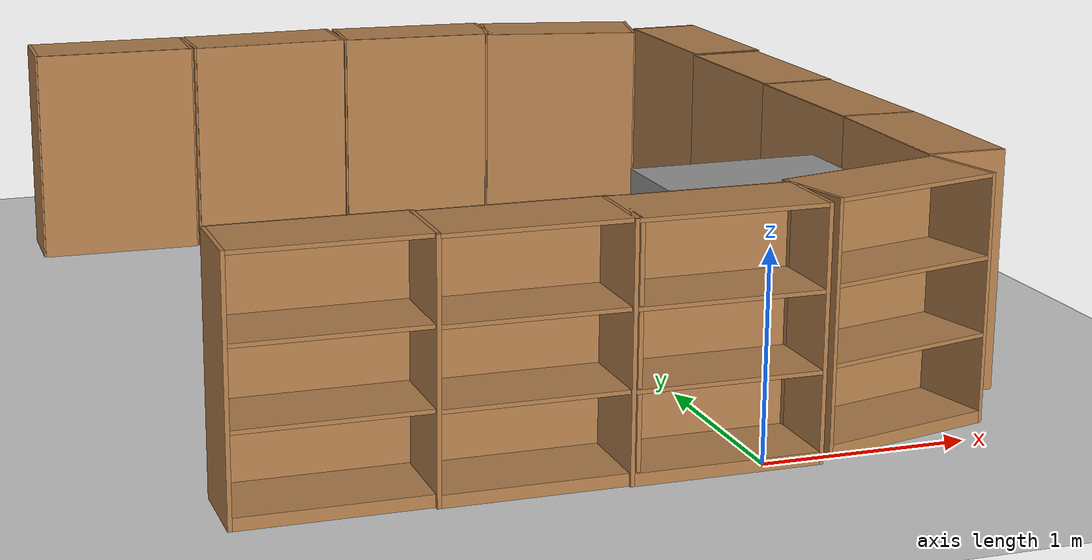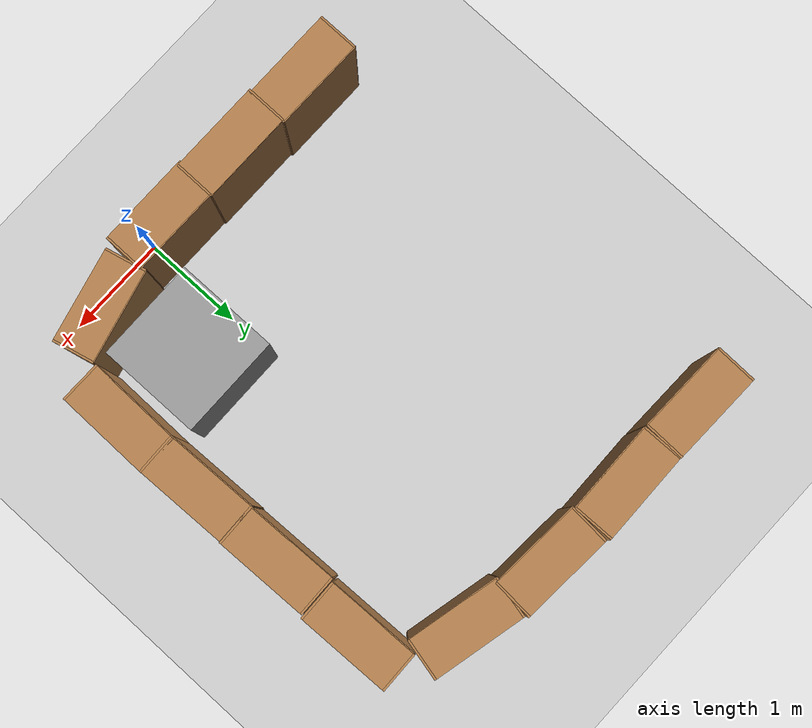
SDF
<sdf version="1.4">
 <world name="default">
  <model name="ground_plane">
   <static>1</static>
   <link name="link">
    <collision name="collision">
     <geometry><plane><normal>0 0 1</normal><size>100 100</size></plane></geometry>
     <surface><friction><ode><mu>100</mu><mu2>50</mu2></ode></friction></surface>
    </collision>
    <visual name="visual">
     <cast_shadows>0</cast_shadows>
     <geometry><plane><normal>0 0 1</normal><size>100 100</size></plane></geometry>
     <material>
      <script><uri>file://media/materials/scripts/gazebo.material</uri><name>Gazebo/Grey</name></script>
     </material>
    </visual>
    <velocity_decay><linear>0</linear><angular>0</angular></velocity_decay>
   </link>
  </model>
  <model name="bookshelf_0">
   <static>1</static>
   <link name="link">
    <inertial><mass>1</mass></inertial>
    <collision name="back">
     <pose>0 0.005 0.6 0 -0 0</pose>
     <geometry><box><size>0.9 0.01 1.2</size></box></geometry>
    </collision>
    <visual name="visual1">
     <pose>0 0.005 0.6 0 -0 0</pose>
     <geometry><box><size>0.9 0.01 1.2</size></box></geometry>
     <material>
      <script><uri>file://media/materials/scripts/gazebo.material</uri><name>Gazebo/Wood</name></script>
     </material>
    </visual>
    <collision name="left_side">
     <pose>0.45 -0.195 0.6 0 -0 0</pose>
     <geometry><box><size>0.02 0.4 1.2</size></box></geometry>
    </collision>
    <visual name="visual2">
     <pose>0.45 -0.195 0.6 0 -0 0</pose>
     <geometry><box><size>0.02 0.4 1.2</size></box></geometry>
     <material>
      <script><uri>file://media/materials/scripts/gazebo.material</uri><name>Gazebo/Wood</name></script>
     </material>
    </visual>
    <collision name="right_side">
     <pose>-0.45 -0.195 0.6 0 -0 0</pose>
     <geometry><box><size>0.02 0.4 1.2</size></box></geometry>
    </collision>
    <visual name="visual3">
     <pose>-0.45 -0.195 0.6 0 -0 0</pose>
     <geometry><box><size>0.02 0.4 1.2</size></box></geometry>
     <material>
      <script><uri>file://media/materials/scripts/gazebo.material</uri><name>Gazebo/Wood</name></script>
     </material>
    </visual>
    <collision name="bottom">
     <pose>0 -0.195 0.03 0 -0 0</pose>
     <geometry><box><size>0.88 0.4 0.06</size></box></geometry>
    </collision>
    <visual name="visual4">
     <pose>0 -0.195 0.03 0 -0 0</pose>
     <geometry><box><size>0.88 0.4 0.06</size></box></geometry>
     <material>
      <script><uri>file://media/materials/scripts/gazebo.material</uri><name>Gazebo/Wood</name></script>
     </material>
    </visual>
    <collision name="top">
     <pose>0 -0.195 1.19 0 -0 0</pose>
     <geometry><box><size>0.88 0.4 0.02</size></box></geometry>
    </collision>
    <visual name="visual5">
     <pose>0 -0.195 1.19 0 -0 0</pose>
     <geometry><box><size>0.88 0.4 0.02</size></box></geometry>
     <material>
      <script><uri>file://media/materials/scripts/gazebo.material</uri><name>Gazebo/Wood</name></script>
     </material>
    </visual>
    <collision name="low_shelf">
     <pose>0 -0.195 0.43 0 -0 0</pose>
     <geometry><box><size>0.88 0.4 0.02</size></box></geometry>
    </collision>
    <visual name="visual6">
     <pose>0 -0.195 0.43 0 -0 0</pose>
     <geometry><box><size>0.88 0.4 0.02</size></box></geometry>
     <material>
      <script><uri>file://media/materials/scripts/gazebo.material</uri><name>Gazebo/Wood</name></script>
     </material>
    </visual>
    <collision name="high_shelf">
     <pose>0 -0.195 0.8 0 -0 0</pose>
     <geometry><box><size>0.88 0.4 0.02</size></box></geometry>
    </collision>
    <visual name="visual7">
     <pose>0 -0.195 0.8 0 -0 0</pose>
     <geometry><box><size>0.88 0.4 0.02</size></box></geometry>
     <material>
      <script><uri>file://media/materials/scripts/gazebo.material</uri><name>Gazebo/Wood</name></script>
     </material>
    </visual>
    <velocity_decay><linear>0</linear><angular>0</angular></velocity_decay>
   </link>
   <pose>-1.96662 0.347335 0 0 -0 0</pose>
  </model>
  <model name="bookshelf_1">
   <static>1</static>
   <link name="link">
    <inertial><mass>1</mass></inertial>
    <collision name="back">
     <pose>0 0.005 0.6 0 -0 0</pose>
     <geometry><box><size>0.9 0.01 1.2</size></box></geometry>
    </collision>
    <visual name="visual1">
     <pose>0 0.005 0.6 0 -0 0</pose>
     <geometry><box><size>0.9 0.01 1.2</size></box></geometry>
     <material>
      <script><uri>file://media/materials/scripts/gazebo.material</uri><name>Gazebo/Wood</name></script>
     </material>
    </visual>
    <collision name="left_side">
     <pose>0.45 -0.195 0.6 0 -0 0</pose>
     <geometry><box><size>0.02 0.4 1.2</size></box></geometry>
    </collision>
    <visual name="visual2">
     <pose>0.45 -0.195 0.6 0 -0 0</pose>
     <geometry><box><size>0.02 0.4 1.2</size></box></geometry>
     <material>
      <script><uri>file://media/materials/scripts/gazebo.material</uri><name>Gazebo/Wood</name></script>
     </material>
    </visual>
    <collision name="right_side">
     <pose>-0.45 -0.195 0.6 0 -0 0</pose>
     <geometry><box><size>0.02 0.4 1.2</size></box></geometry>
    </collision>
    <visual name="visual3">
     <pose>-0.45 -0.195 0.6 0 -0 0</pose>
     <geometry><box><size>0.02 0.4 1.2</size></box></geometry>
     <material>
      <script><uri>file://media/materials/scripts/gazebo.material</uri><name>Gazebo/Wood</name></script>
     </material>
    </visual>
    <collision name="bottom">
     <pose>0 -0.195 0.03 0 -0 0</pose>
     <geometry><box><size>0.88 0.4 0.06</size></box></geometry>
    </collision>
    <visual name="visual4">
     <pose>0 -0.195 0.03 0 -0 0</pose>
     <geometry><box><size>0.88 0.4 0.06</size></box></geometry>
     <material>
      <script><uri>file://media/materials/scripts/gazebo.material</uri><name>Gazebo/Wood</name></script>
     </material>
    </visual>
    <collision name="top">
     <pose>0 -0.195 1.19 0 -0 0</pose>
     <geometry><box><size>0.88 0.4 0.02</size></box></geometry>
    </collision>
    <visual name="visual5">
     <pose>0 -0.195 1.19 0 -0 0</pose>
     <geometry><box><size>0.88 0.4 0.02</size></box></geometry>
     <material>
      <script><uri>file://media/materials/scripts/gazebo.material</uri><name>Gazebo/Wood</name></script>
     </material>
    </visual>
    <collision name="low_shelf">
     <pose>0 -0.195 0.43 0 -0 0</pose>
     <geometry><box><size>0.88 0.4 0.02</size></box></geometry>
    </collision>
    <visual name="visual6">
     <pose>0 -0.195 0.43 0 -0 0</pose>
     <geometry><box><size>0.88 0.4 0.02</size></box></geometry>
     <material>
      <script><uri>file://media/materials/scripts/gazebo.material</uri><name>Gazebo/Wood</name></script>
     </material>
    </visual>
    <collision name="high_shelf">
     <pose>0 -0.195 0.8 0 -0 0</pose>
     <geometry><box><size>0.88 0.4 0.02</size></box></geometry>
    </collision>
    <visual name="visual7">
     <pose>0 -0.195 0.8 0 -0 0</pose>
     <geometry><box><size>0.88 0.4 0.02</size></box></geometry>
     <material>
      <script><uri>file://media/materials/scripts/gazebo.material</uri><name>Gazebo/Wood</name></script>
     </material>
    </visual>
    <velocity_decay><linear>0</linear><angular>0</angular></velocity_decay>
   </link>
   <pose>-1.07116 0.328228 0 0 -0 0</pose>
  </model>
  <model name="bookshelf_2">
   <static>1</static>
   <link name="link">
    <inertial><mass>1</mass></inertial>
    <collision name="back">
     <pose>0 0.005 0.6 0 -0 0</pose>
     <geometry><box><size>0.9 0.01 1.2</size></box></geometry>
    </collision>
    <visual name="visual1">
     <pose>0 0.005 0.6 0 -0 0</pose>
     <geometry><box><size>0.9 0.01 1.2</size></box></geometry>
     <material>
      <script><uri>file://media/materials/scripts/gazebo.material</uri><name>Gazebo/Wood</name></script>
     </material>
    </visual>
    <collision name="left_side">
     <pose>0.45 -0.195 0.6 0 -0 0</pose>
     <geometry><box><size>0.02 0.4 1.2</size></box></geometry>
    </collision>
    <visual name="visual2">
     <pose>0.45 -0.195 0.6 0 -0 0</pose>
     <geometry><box><size>0.02 0.4 1.2</size></box></geometry>
     <material>
      <script><uri>file://media/materials/scripts/gazebo.material</uri><name>Gazebo/Wood</name></script>
     </material>
    </visual>
    <collision name="right_side">
     <pose>-0.45 -0.195 0.6 0 -0 0</pose>
     <geometry><box><size>0.02 0.4 1.2</size></box></geometry>
    </collision>
    <visual name="visual3">
     <pose>-0.45 -0.195 0.6 0 -0 0</pose>
     <geometry><box><size>0.02 0.4 1.2</size></box></geometry>
     <material>
      <script><uri>file://media/materials/scripts/gazebo.material</uri><name>Gazebo/Wood</name></script>
     </material>
    </visual>
    <collision name="bottom">
     <pose>0 -0.195 0.03 0 -0 0</pose>
     <geometry><box><size>0.88 0.4 0.06</size></box></geometry>
    </collision>
    <visual name="visual4">
     <pose>0 -0.195 0.03 0 -0 0</pose>
     <geometry><box><size>0.88 0.4 0.06</size></box></geometry>
     <material>
      <script><uri>file://media/materials/scripts/gazebo.material</uri><name>Gazebo/Wood</name></script>
     </material>
    </visual>
    <collision name="top">
     <pose>0 -0.195 1.19 0 -0 0</pose>
     <geometry><box><size>0.88 0.4 0.02</size></box></geometry>
    </collision>
    <visual name="visual5">
     <pose>0 -0.195 1.19 0 -0 0</pose>
     <geometry><box><size>0.88 0.4 0.02</size></box></geometry>
     <material>
      <script><uri>file://media/materials/scripts/gazebo.material</uri><name>Gazebo/Wood</name></script>
     </material>
    </visual>
    <collision name="low_shelf">
     <pose>0 -0.195 0.43 0 -0 0</pose>
     <geometry><box><size>0.88 0.4 0.02</size></box></geometry>
    </collision>
    <visual name="visual6">
     <pose>0 -0.195 0.43 0 -0 0</pose>
     <geometry><box><size>0.88 0.4 0.02</size></box></geometry>
     <material>
      <script><uri>file://media/materials/scripts/gazebo.material</uri><name>Gazebo/Wood</name></script>
     </material>
    </visual>
    <collision name="high_shelf">
     <pose>0 -0.195 0.8 0 -0 0</pose>
     <geometry><box><size>0.88 0.4 0.02</size></box></geometry>
    </collision>
    <visual name="visual7">
     <pose>0 -0.195 0.8 0 -0 0</pose>
     <geometry><box><size>0.88 0.4 0.02</size></box></geometry>
     <material>
      <script><uri>file://media/materials/scripts/gazebo.material</uri><name>Gazebo/Wood</name></script>
     </material>
    </visual>
    <velocity_decay><linear>0</linear><angular>0</angular></velocity_decay>
   </link>
   <pose>-0.202462 0.315464 0 0 -0 0</pose>
  </model>
  <model name="bookshelf_3">
   <static>1</static>
   <link name="link">
    <inertial><mass>1</mass></inertial>
    <collision name="back">
     <pose>0 0.005 0.6 0 -0 0</pose>
     <geometry><box><size>0.9 0.01 1.2</size></box></geometry>
    </collision>
    <visual name="visual1">
     <pose>0 0.005 0.6 0 -0 0</pose>
     <geometry><box><size>0.9 0.01 1.2</size></box></geometry>
     <material>
      <script><uri>file://media/materials/scripts/gazebo.material</uri><name>Gazebo/Wood</name></script>
     </material>
    </visual>
    <collision name="left_side">
     <pose>0.45 -0.195 0.6 0 -0 0</pose>
     <geometry><box><size>0.02 0.4 1.2</size></box></geometry>
    </collision>
    <visual name="visual2">
     <pose>0.45 -0.195 0.6 0 -0 0</pose>
     <geometry><box><size>0.02 0.4 1.2</size></box></geometry>
     <material>
      <script><uri>file://media/materials/scripts/gazebo.material</uri><name>Gazebo/Wood</name></script>
     </material>
    </visual>
    <collision name="right_side">
     <pose>-0.45 -0.195 0.6 0 -0 0</pose>
     <geometry><box><size>0.02 0.4 1.2</size></box></geometry>
    </collision>
    <visual name="visual3">
     <pose>-0.45 -0.195 0.6 0 -0 0</pose>
     <geometry><box><size>0.02 0.4 1.2</size></box></geometry>
     <material>
      <script><uri>file://media/materials/scripts/gazebo.material</uri><name>Gazebo/Wood</name></script>
     </material>
    </visual>
    <collision name="bottom">
     <pose>0 -0.195 0.03 0 -0 0</pose>
     <geometry><box><size>0.88 0.4 0.06</size></box></geometry>
    </collision>
    <visual name="visual4">
     <pose>0 -0.195 0.03 0 -0 0</pose>
     <geometry><box><size>0.88 0.4 0.06</size></box></geometry>
     <material>
      <script><uri>file://media/materials/scripts/gazebo.material</uri><name>Gazebo/Wood</name></script>
     </material>
    </visual>
    <collision name="top">
     <pose>0 -0.195 1.19 0 -0 0</pose>
     <geometry><box><size>0.88 0.4 0.02</size></box></geometry>
    </collision>
    <visual name="visual5">
     <pose>0 -0.195 1.19 0 -0 0</pose>
     <geometry><box><size>0.88 0.4 0.02</size></box></geometry>
     <material>
      <script><uri>file://media/materials/scripts/gazebo.material</uri><name>Gazebo/Wood</name></script>
     </material>
    </visual>
    <collision name="low_shelf">
     <pose>0 -0.195 0.43 0 -0 0</pose>
     <geometry><box><size>0.88 0.4 0.02</size></box></geometry>
    </collision>
    <visual name="visual6">
     <pose>0 -0.195 0.43 0 -0 0</pose>
     <geometry><box><size>0.88 0.4 0.02</size></box></geometry>
     <material>
      <script><uri>file://media/materials/scripts/gazebo.material</uri><name>Gazebo/Wood</name></script>
     </material>
    </visual>
    <collision name="high_shelf">
     <pose>0 -0.195 0.8 0 -0 0</pose>
     <geometry><box><size>0.88 0.4 0.02</size></box></geometry>
    </collision>
    <visual name="visual7">
     <pose>0 -0.195 0.8 0 -0 0</pose>
     <geometry><box><size>0.88 0.4 0.02</size></box></geometry>
     <material>
      <script><uri>file://media/materials/scripts/gazebo.material</uri><name>Gazebo/Wood</name></script>
     </material>
    </visual>
    <velocity_decay><linear>0</linear><angular>0</angular></velocity_decay>
   </link>
   <pose>0.668091 0.468946 0 0 -0 0.24</pose>
  </model>
  <model name="bookshelf_6">
   <static>1</static>
   <link name="link">
    <inertial><mass>1</mass></inertial>
    <collision name="back">
     <pose>0 0.005 0.6 0 -0 0</pose>
     <geometry><box><size>0.9 0.01 1.2</size></box></geometry>
    </collision>
    <visual name="visual1">
     <pose>0 0.005 0.6 0 -0 0</pose>
     <geometry><box><size>0.9 0.01 1.2</size></box></geometry>
     <material>
      <script><uri>file://media/materials/scripts/gazebo.material</uri><name>Gazebo/Wood</name></script>
     </material>
    </visual>
    <collision name="left_side">
     <pose>0.45 -0.195 0.6 0 -0 0</pose>
     <geometry><box><size>0.02 0.4 1.2</size></box></geometry>
    </collision>
    <visual name="visual2">
     <pose>0.45 -0.195 0.6 0 -0 0</pose>
     <geometry><box><size>0.02 0.4 1.2</size></box></geometry>
     <material>
      <script><uri>file://media/materials/scripts/gazebo.material</uri><name>Gazebo/Wood</name></script>
     </material>
    </visual>
    <collision name="right_side">
     <pose>-0.45 -0.195 0.6 0 -0 0</pose>
     <geometry><box><size>0.02 0.4 1.2</size></box></geometry>
    </collision>
    <visual name="visual3">
     <pose>-0.45 -0.195 0.6 0 -0 0</pose>
     <geometry><box><size>0.02 0.4 1.2</size></box></geometry>
     <material>
      <script><uri>file://media/materials/scripts/gazebo.material</uri><name>Gazebo/Wood</name></script>
     </material>
    </visual>
    <collision name="bottom">
     <pose>0 -0.195 0.03 0 -0 0</pose>
     <geometry><box><size>0.88 0.4 0.06</size></box></geometry>
    </collision>
    <visual name="visual4">
     <pose>0 -0.195 0.03 0 -0 0</pose>
     <geometry><box><size>0.88 0.4 0.06</size></box></geometry>
     <material>
      <script><uri>file://media/materials/scripts/gazebo.material</uri><name>Gazebo/Wood</name></script>
     </material>
    </visual>
    <collision name="top">
     <pose>0 -0.195 1.19 0 -0 0</pose>
     <geometry><box><size>0.88 0.4 0.02</size></box></geometry>
    </collision>
    <visual name="visual5">
     <pose>0 -0.195 1.19 0 -0 0</pose>
     <geometry><box><size>0.88 0.4 0.02</size></box></geometry>
     <material>
      <script><uri>file://media/materials/scripts/gazebo.material</uri><name>Gazebo/Wood</name></script>
     </material>
    </visual>
    <collision name="low_shelf">
     <pose>0 -0.195 0.43 0 -0 0</pose>
     <geometry><box><size>0.88 0.4 0.02</size></box></geometry>
    </collision>
    <visual name="visual6">
     <pose>0 -0.195 0.43 0 -0 0</pose>
     <geometry><box><size>0.88 0.4 0.02</size></box></geometry>
     <material>
      <script><uri>file://media/materials/scripts/gazebo.material</uri><name>Gazebo/Wood</name></script>
     </material>
    </visual>
    <collision name="high_shelf">
     <pose>0 -0.195 0.8 0 -0 0</pose>
     <geometry><box><size>0.88 0.4 0.02</size></box></geometry>
    </collision>
    <visual name="visual7">
     <pose>0 -0.195 0.8 0 -0 0</pose>
     <geometry><box><size>0.88 0.4 0.02</size></box></geometry>
     <material>
      <script><uri>file://media/materials/scripts/gazebo.material</uri><name>Gazebo/Wood</name></script>
     </material>
    </visual>
    <velocity_decay><linear>0</linear><angular>0</angular></velocity_decay>
   </link>
   <pose>-2.11756 4.40334 0 0 -0 3.12318</pose>
  </model>
  <model name="bookshelf_7">
   <static>1</static>
   <link name="link">
    <inertial><mass>1</mass></inertial>
    <collision name="back">
     <pose>0 0.005 0.6 0 -0 0</pose>
     <geometry><box><size>0.9 0.01 1.2</size></box></geometry>
    </collision>
    <visual name="visual1">
     <pose>0 0.005 0.6 0 -0 0</pose>
     <geometry><box><size>0.9 0.01 1.2</size></box></geometry>
     <material>
      <script><uri>file://media/materials/scripts/gazebo.material</uri><name>Gazebo/Wood</name></script>
     </material>
    </visual>
    <collision name="left_side">
     <pose>0.45 -0.195 0.6 0 -0 0</pose>
     <geometry><box><size>0.02 0.4 1.2</size></box></geometry>
    </collision>
    <visual name="visual2">
     <pose>0.45 -0.195 0.6 0 -0 0</pose>
     <geometry><box><size>0.02 0.4 1.2</size></box></geometry>
     <material>
      <script><uri>file://media/materials/scripts/gazebo.material</uri><name>Gazebo/Wood</name></script>
     </material>
    </visual>
    <collision name="right_side">
     <pose>-0.45 -0.195 0.6 0 -0 0</pose>
     <geometry><box><size>0.02 0.4 1.2</size></box></geometry>
    </collision>
    <visual name="visual3">
     <pose>-0.45 -0.195 0.6 0 -0 0</pose>
     <geometry><box><size>0.02 0.4 1.2</size></box></geometry>
     <material>
      <script><uri>file://media/materials/scripts/gazebo.material</uri><name>Gazebo/Wood</name></script>
     </material>
    </visual>
    <collision name="bottom">
     <pose>0 -0.195 0.03 0 -0 0</pose>
     <geometry><box><size>0.88 0.4 0.06</size></box></geometry>
    </collision>
    <visual name="visual4">
     <pose>0 -0.195 0.03 0 -0 0</pose>
     <geometry><box><size>0.88 0.4 0.06</size></box></geometry>
     <material>
      <script><uri>file://media/materials/scripts/gazebo.material</uri><name>Gazebo/Wood</name></script>
     </material>
    </visual>
    <collision name="top">
     <pose>0 -0.195 1.19 0 -0 0</pose>
     <geometry><box><size>0.88 0.4 0.02</size></box></geometry>
    </collision>
    <visual name="visual5">
     <pose>0 -0.195 1.19 0 -0 0</pose>
     <geometry><box><size>0.88 0.4 0.02</size></box></geometry>
     <material>
      <script><uri>file://media/materials/scripts/gazebo.material</uri><name>Gazebo/Wood</name></script>
     </material>
    </visual>
    <collision name="low_shelf">
     <pose>0 -0.195 0.43 0 -0 0</pose>
     <geometry><box><size>0.88 0.4 0.02</size></box></geometry>
    </collision>
    <visual name="visual6">
     <pose>0 -0.195 0.43 0 -0 0</pose>
     <geometry><box><size>0.88 0.4 0.02</size></box></geometry>
     <material>
      <script><uri>file://media/materials/scripts/gazebo.material</uri><name>Gazebo/Wood</name></script>
     </material>
    </visual>
    <collision name="high_shelf">
     <pose>0 -0.195 0.8 0 -0 0</pose>
     <geometry><box><size>0.88 0.4 0.02</size></box></geometry>
    </collision>
    <visual name="visual7">
     <pose>0 -0.195 0.8 0 -0 0</pose>
     <geometry><box><size>0.88 0.4 0.02</size></box></geometry>
     <material>
      <script><uri>file://media/materials/scripts/gazebo.material</uri><name>Gazebo/Wood</name></script>
     </material>
    </visual>
    <velocity_decay><linear>0</linear><angular>0</angular></velocity_decay>
   </link>
   <pose>-1.19087 4.40083 0 0 0 -3.12</pose>
  </model>
  <model name="bookshelf_8">
   <static>1</static>
   <link name="link">
    <inertial><mass>1</mass></inertial>
    <collision name="back">
     <pose>0 0.005 0.6 0 -0 0</pose>
     <geometry><box><size>0.9 0.01 1.2</size></box></geometry>
    </collision>
    <visual name="visual1">
     <pose>0 0.005 0.6 0 -0 0</pose>
     <geometry><box><size>0.9 0.01 1.2</size></box></geometry>
     <material>
      <script><uri>file://media/materials/scripts/gazebo.material</uri><name>Gazebo/Wood</name></script>
     </material>
    </visual>
    <collision name="left_side">
     <pose>0.45 -0.195 0.6 0 -0 0</pose>
     <geometry><box><size>0.02 0.4 1.2</size></box></geometry>
    </collision>
    <visual name="visual2">
     <pose>0.45 -0.195 0.6 0 -0 0</pose>
     <geometry><box><size>0.02 0.4 1.2</size></box></geometry>
     <material>
      <script><uri>file://media/materials/scripts/gazebo.material</uri><name>Gazebo/Wood</name></script>
     </material>
    </visual>
    <collision name="right_side">
     <pose>-0.45 -0.195 0.6 0 -0 0</pose>
     <geometry><box><size>0.02 0.4 1.2</size></box></geometry>
    </collision>
    <visual name="visual3">
     <pose>-0.45 -0.195 0.6 0 -0 0</pose>
     <geometry><box><size>0.02 0.4 1.2</size></box></geometry>
     <material>
      <script><uri>file://media/materials/scripts/gazebo.material</uri><name>Gazebo/Wood</name></script>
     </material>
    </visual>
    <collision name="bottom">
     <pose>0 -0.195 0.03 0 -0 0</pose>
     <geometry><box><size>0.88 0.4 0.06</size></box></geometry>
    </collision>
    <visual name="visual4">
     <pose>0 -0.195 0.03 0 -0 0</pose>
     <geometry><box><size>0.88 0.4 0.06</size></box></geometry>
     <material>
      <script><uri>file://media/materials/scripts/gazebo.material</uri><name>Gazebo/Wood</name></script>
     </material>
    </visual>
    <collision name="top">
     <pose>0 -0.195 1.19 0 -0 0</pose>
     <geometry><box><size>0.88 0.4 0.02</size></box></geometry>
    </collision>
    <visual name="visual5">
     <pose>0 -0.195 1.19 0 -0 0</pose>
     <geometry><box><size>0.88 0.4 0.02</size></box></geometry>
     <material>
      <script><uri>file://media/materials/scripts/gazebo.material</uri><name>Gazebo/Wood</name></script>
     </material>
    </visual>
    <collision name="low_shelf">
     <pose>0 -0.195 0.43 0 -0 0</pose>
     <geometry><box><size>0.88 0.4 0.02</size></box></geometry>
    </collision>
    <visual name="visual6">
     <pose>0 -0.195 0.43 0 -0 0</pose>
     <geometry><box><size>0.88 0.4 0.02</size></box></geometry>
     <material>
      <script><uri>file://media/materials/scripts/gazebo.material</uri><name>Gazebo/Wood</name></script>
     </material>
    </visual>
    <collision name="high_shelf">
     <pose>0 -0.195 0.8 0 -0 0</pose>
     <geometry><box><size>0.88 0.4 0.02</size></box></geometry>
    </collision>
    <visual name="visual7">
     <pose>0 -0.195 0.8 0 -0 0</pose>
     <geometry><box><size>0.88 0.4 0.02</size></box></geometry>
     <material>
      <script><uri>file://media/materials/scripts/gazebo.material</uri><name>Gazebo/Wood</name></script>
     </material>
    </visual>
    <velocity_decay><linear>0</linear><angular>0</angular></velocity_decay>
   </link>
   <pose>-0.279273 4.36332 0 0 -0 3.08318</pose>
  </model>
  <model name="bookshelf_11">
   <static>1</static>
   <link name="link">
    <inertial><mass>1</mass></inertial>
    <collision name="back">
     <pose>0 0.005 0.6 0 -0 0</pose>
     <geometry><box><size>0.9 0.01 1.2</size></box></geometry>
    </collision>
    <visual name="visual1">
     <pose>0 0.005 0.6 0 -0 0</pose>
     <geometry><box><size>0.9 0.01 1.2</size></box></geometry>
     <material>
      <script><uri>file://media/materials/scripts/gazebo.material</uri><name>Gazebo/Wood</name></script>
     </material>
    </visual>
    <collision name="left_side">
     <pose>0.45 -0.195 0.6 0 -0 0</pose>
     <geometry><box><size>0.02 0.4 1.2</size></box></geometry>
    </collision>
    <visual name="visual2">
     <pose>0.45 -0.195 0.6 0 -0 0</pose>
     <geometry><box><size>0.02 0.4 1.2</size></box></geometry>
     <material>
      <script><uri>file://media/materials/scripts/gazebo.material</uri><name>Gazebo/Wood</name></script>
     </material>
    </visual>
    <collision name="right_side">
     <pose>-0.45 -0.195 0.6 0 -0 0</pose>
     <geometry><box><size>0.02 0.4 1.2</size></box></geometry>
    </collision>
    <visual name="visual3">
     <pose>-0.45 -0.195 0.6 0 -0 0</pose>
     <geometry><box><size>0.02 0.4 1.2</size></box></geometry>
     <material>
      <script><uri>file://media/materials/scripts/gazebo.material</uri><name>Gazebo/Wood</name></script>
     </material>
    </visual>
    <collision name="bottom">
     <pose>0 -0.195 0.03 0 -0 0</pose>
     <geometry><box><size>0.88 0.4 0.06</size></box></geometry>
    </collision>
    <visual name="visual4">
     <pose>0 -0.195 0.03 0 -0 0</pose>
     <geometry><box><size>0.88 0.4 0.06</size></box></geometry>
     <material>
      <script><uri>file://media/materials/scripts/gazebo.material</uri><name>Gazebo/Wood</name></script>
     </material>
    </visual>
    <collision name="top">
     <pose>0 -0.195 1.19 0 -0 0</pose>
     <geometry><box><size>0.88 0.4 0.02</size></box></geometry>
    </collision>
    <visual name="visual5">
     <pose>0 -0.195 1.19 0 -0 0</pose>
     <geometry><box><size>0.88 0.4 0.02</size></box></geometry>
     <material>
      <script><uri>file://media/materials/scripts/gazebo.material</uri><name>Gazebo/Wood</name></script>
     </material>
    </visual>
    <collision name="low_shelf">
     <pose>0 -0.195 0.43 0 -0 0</pose>
     <geometry><box><size>0.88 0.4 0.02</size></box></geometry>
    </collision>
    <visual name="visual6">
     <pose>0 -0.195 0.43 0 -0 0</pose>
     <geometry><box><size>0.88 0.4 0.02</size></box></geometry>
     <material>
      <script><uri>file://media/materials/scripts/gazebo.material</uri><name>Gazebo/Wood</name></script>
     </material>
    </visual>
    <collision name="high_shelf">
     <pose>0 -0.195 0.8 0 -0 0</pose>
     <geometry><box><size>0.88 0.4 0.02</size></box></geometry>
    </collision>
    <visual name="visual7">
     <pose>0 -0.195 0.8 0 -0 0</pose>
     <geometry><box><size>0.88 0.4 0.02</size></box></geometry>
     <material>
      <script><uri>file://media/materials/scripts/gazebo.material</uri><name>Gazebo/Wood</name></script>
     </material>
    </visual>
    <velocity_decay><linear>0</linear><angular>0</angular></velocity_decay>
   </link>
   <pose>1.09969 1.94628 0 0 -0 1.6</pose>
  </model>
  <model name="bookshelf_12">
   <static>1</static>
   <link name="link">
    <inertial><mass>1</mass></inertial>
    <collision name="back">
     <pose>0 0.005 0.6 0 -0 0</pose>
     <geometry><box><size>0.9 0.01 1.2</size></box></geometry>
    </collision>
    <visual name="visual1">
     <pose>0 0.005 0.6 0 -0 0</pose>
     <geometry><box><size>0.9 0.01 1.2</size></box></geometry>
     <material>
      <script><uri>file://media/materials/scripts/gazebo.material</uri><name>Gazebo/Wood</name></script>
     </material>
    </visual>
    <collision name="left_side">
     <pose>0.45 -0.195 0.6 0 -0 0</pose>
     <geometry><box><size>0.02 0.4 1.2</size></box></geometry>
    </collision>
    <visual name="visual2">
     <pose>0.45 -0.195 0.6 0 -0 0</pose>
     <geometry><box><size>0.02 0.4 1.2</size></box></geometry>
     <material>
      <script><uri>file://media/materials/scripts/gazebo.material</uri><name>Gazebo/Wood</name></script>
     </material>
    </visual>
    <collision name="right_side">
     <pose>-0.45 -0.195 0.6 0 -0 0</pose>
     <geometry><box><size>0.02 0.4 1.2</size></box></geometry>
    </collision>
    <visual name="visual3">
     <pose>-0.45 -0.195 0.6 0 -0 0</pose>
     <geometry><box><size>0.02 0.4 1.2</size></box></geometry>
     <material>
      <script><uri>file://media/materials/scripts/gazebo.material</uri><name>Gazebo/Wood</name></script>
     </material>
    </visual>
    <collision name="bottom">
     <pose>0 -0.195 0.03 0 -0 0</pose>
     <geometry><box><size>0.88 0.4 0.06</size></box></geometry>
    </collision>
    <visual name="visual4">
     <pose>0 -0.195 0.03 0 -0 0</pose>
     <geometry><box><size>0.88 0.4 0.06</size></box></geometry>
     <material>
      <script><uri>file://media/materials/scripts/gazebo.material</uri><name>Gazebo/Wood</name></script>
     </material>
    </visual>
    <collision name="top">
     <pose>0 -0.195 1.19 0 -0 0</pose>
     <geometry><box><size>0.88 0.4 0.02</size></box></geometry>
    </collision>
    <visual name="visual5">
     <pose>0 -0.195 1.19 0 -0 0</pose>
     <geometry><box><size>0.88 0.4 0.02</size></box></geometry>
     <material>
      <script><uri>file://media/materials/scripts/gazebo.material</uri><name>Gazebo/Wood</name></script>
     </material>
    </visual>
    <collision name="low_shelf">
     <pose>0 -0.195 0.43 0 -0 0</pose>
     <geometry><box><size>0.88 0.4 0.02</size></box></geometry>
    </collision>
    <visual name="visual6">
     <pose>0 -0.195 0.43 0 -0 0</pose>
     <geometry><box><size>0.88 0.4 0.02</size></box></geometry>
     <material>
      <script><uri>file://media/materials/scripts/gazebo.material</uri><name>Gazebo/Wood</name></script>
     </material>
    </visual>
    <collision name="high_shelf">
     <pose>0 -0.195 0.8 0 -0 0</pose>
     <geometry><box><size>0.88 0.4 0.02</size></box></geometry>
    </collision>
    <visual name="visual7">
     <pose>0 -0.195 0.8 0 -0 0</pose>
     <geometry><box><size>0.88 0.4 0.02</size></box></geometry>
     <material>
      <script><uri>file://media/materials/scripts/gazebo.material</uri><name>Gazebo/Wood</name></script>
     </material>
    </visual>
    <velocity_decay><linear>0</linear><angular>0</angular></velocity_decay>
   </link>
   <pose>1.08164 2.84964 0 0 -0 1.6</pose>
  </model>
  <model name="bookshelf_18">
   <static>1</static>
   <link name="link">
    <inertial><mass>1</mass></inertial>
    <collision name="back">
     <pose>0 0.005 0.6 0 -0 0</pose>
     <geometry><box><size>0.9 0.01 1.2</size></box></geometry>
    </collision>
    <visual name="visual1">
     <pose>0 0.005 0.6 0 -0 0</pose>
     <geometry><box><size>0.9 0.01 1.2</size></box></geometry>
     <material>
      <script><uri>file://media/materials/scripts/gazebo.material</uri><name>Gazebo/Wood</name></script>
     </material>
    </visual>
    <collision name="left_side">
     <pose>0.45 -0.195 0.6 0 -0 0</pose>
     <geometry><box><size>0.02 0.4 1.2</size></box></geometry>
    </collision>
    <visual name="visual2">
     <pose>0.45 -0.195 0.6 0 -0 0</pose>
     <geometry><box><size>0.02 0.4 1.2</size></box></geometry>
     <material>
      <script><uri>file://media/materials/scripts/gazebo.material</uri><name>Gazebo/Wood</name></script>
     </material>
    </visual>
    <collision name="right_side">
     <pose>-0.45 -0.195 0.6 0 -0 0</pose>
     <geometry><box><size>0.02 0.4 1.2</size></box></geometry>
    </collision>
    <visual name="visual3">
     <pose>-0.45 -0.195 0.6 0 -0 0</pose>
     <geometry><box><size>0.02 0.4 1.2</size></box></geometry>
     <material>
      <script><uri>file://media/materials/scripts/gazebo.material</uri><name>Gazebo/Wood</name></script>
     </material>
    </visual>
    <collision name="bottom">
     <pose>0 -0.195 0.03 0 -0 0</pose>
     <geometry><box><size>0.88 0.4 0.06</size></box></geometry>
    </collision>
    <visual name="visual4">
     <pose>0 -0.195 0.03 0 -0 0</pose>
     <geometry><box><size>0.88 0.4 0.06</size></box></geometry>
     <material>
      <script><uri>file://media/materials/scripts/gazebo.material</uri><name>Gazebo/Wood</name></script>
     </material>
    </visual>
    <collision name="top">
     <pose>0 -0.195 1.19 0 -0 0</pose>
     <geometry><box><size>0.88 0.4 0.02</size></box></geometry>
    </collision>
    <visual name="visual5">
     <pose>0 -0.195 1.19 0 -0 0</pose>
     <geometry><box><size>0.88 0.4 0.02</size></box></geometry>
     <material>
      <script><uri>file://media/materials/scripts/gazebo.material</uri><name>Gazebo/Wood</name></script>
     </material>
    </visual>
    <collision name="low_shelf">
     <pose>0 -0.195 0.43 0 -0 0</pose>
     <geometry><box><size>0.88 0.4 0.02</size></box></geometry>
    </collision>
    <visual name="visual6">
     <pose>0 -0.195 0.43 0 -0 0</pose>
     <geometry><box><size>0.88 0.4 0.02</size></box></geometry>
     <material>
      <script><uri>file://media/materials/scripts/gazebo.material</uri><name>Gazebo/Wood</name></script>
     </material>
    </visual>
    <collision name="high_shelf">
     <pose>0 -0.195 0.8 0 -0 0</pose>
     <geometry><box><size>0.88 0.4 0.02</size></box></geometry>
    </collision>
    <visual name="visual7">
     <pose>0 -0.195 0.8 0 -0 0</pose>
     <geometry><box><size>0.88 0.4 0.02</size></box></geometry>
     <material>
      <script><uri>file://media/materials/scripts/gazebo.material</uri><name>Gazebo/Wood</name></script>
     </material>
    </visual>
    <velocity_decay><linear>0</linear><angular>0</angular></velocity_decay>
   </link>
   <pose>0.575815 4.2148 0 0 -0 2.92</pose>
  </model>
  <model name="bookshelf_19">
   <static>1</static>
   <link name="link">
    <inertial><mass>1</mass></inertial>
    <collision name="back">
     <pose>0 0.005 0.6 0 -0 0</pose>
     <geometry><box><size>0.9 0.01 1.2</size></box></geometry>
    </collision>
    <visual name="visual1">
     <pose>0 0.005 0.6 0 -0 0</pose>
     <geometry><box><size>0.9 0.01 1.2</size></box></geometry>
     <material>
      <script><uri>file://media/materials/scripts/gazebo.material</uri><name>Gazebo/Wood</name></script>
     </material>
    </visual>
    <collision name="left_side">
     <pose>0.45 -0.195 0.6 0 -0 0</pose>
     <geometry><box><size>0.02 0.4 1.2</size></box></geometry>
    </collision>
    <visual name="visual2">
     <pose>0.45 -0.195 0.6 0 -0 0</pose>
     <geometry><box><size>0.02 0.4 1.2</size></box></geometry>
     <material>
      <script><uri>file://media/materials/scripts/gazebo.material</uri><name>Gazebo/Wood</name></script>
     </material>
    </visual>
    <collision name="right_side">
     <pose>-0.45 -0.195 0.6 0 -0 0</pose>
     <geometry><box><size>0.02 0.4 1.2</size></box></geometry>
    </collision>
    <visual name="visual3">
     <pose>-0.45 -0.195 0.6 0 -0 0</pose>
     <geometry><box><size>0.02 0.4 1.2</size></box></geometry>
     <material>
      <script><uri>file://media/materials/scripts/gazebo.material</uri><name>Gazebo/Wood</name></script>
     </material>
    </visual>
    <collision name="bottom">
     <pose>0 -0.195 0.03 0 -0 0</pose>
     <geometry><box><size>0.88 0.4 0.06</size></box></geometry>
    </collision>
    <visual name="visual4">
     <pose>0 -0.195 0.03 0 -0 0</pose>
     <geometry><box><size>0.88 0.4 0.06</size></box></geometry>
     <material>
      <script><uri>file://media/materials/scripts/gazebo.material</uri><name>Gazebo/Wood</name></script>
     </material>
    </visual>
    <collision name="top">
     <pose>0 -0.195 1.19 0 -0 0</pose>
     <geometry><box><size>0.88 0.4 0.02</size></box></geometry>
    </collision>
    <visual name="visual5">
     <pose>0 -0.195 1.19 0 -0 0</pose>
     <geometry><box><size>0.88 0.4 0.02</size></box></geometry>
     <material>
      <script><uri>file://media/materials/scripts/gazebo.material</uri><name>Gazebo/Wood</name></script>
     </material>
    </visual>
    <collision name="low_shelf">
     <pose>0 -0.195 0.43 0 -0 0</pose>
     <geometry><box><size>0.88 0.4 0.02</size></box></geometry>
    </collision>
    <visual name="visual6">
     <pose>0 -0.195 0.43 0 -0 0</pose>
     <geometry><box><size>0.88 0.4 0.02</size></box></geometry>
     <material>
      <script><uri>file://media/materials/scripts/gazebo.material</uri><name>Gazebo/Wood</name></script>
     </material>
    </visual>
    <collision name="high_shelf">
     <pose>0 -0.195 0.8 0 -0 0</pose>
     <geometry><box><size>0.88 0.4 0.02</size></box></geometry>
    </collision>
    <visual name="visual7">
     <pose>0 -0.195 0.8 0 -0 0</pose>
     <geometry><box><size>0.88 0.4 0.02</size></box></geometry>
     <material>
      <script><uri>file://media/materials/scripts/gazebo.material</uri><name>Gazebo/Wood</name></script>
     </material>
    </visual>
    <velocity_decay><linear>0</linear><angular>0</angular></velocity_decay>
   </link>
   <pose>1.10917 1.06589 0 0 -0 1.56</pose>
  </model>
  <model name="bookshelf_20">
   <static>1</static>
   <link name="link">
    <inertial><mass>1</mass></inertial>
    <collision name="back">
     <pose>0 0.005 0.6 0 -0 0</pose>
     <geometry><box><size>0.9 0.01 1.2</size></box></geometry>
    </collision>
    <visual name="visual1">
     <pose>0 0.005 0.6 0 -0 0</pose>
     <geometry><box><size>0.9 0.01 1.2</size></box></geometry>
     <material>
      <script><uri>file://media/materials/scripts/gazebo.material</uri><name>Gazebo/Wood</name></script>
     </material>
    </visual>
    <collision name="left_side">
     <pose>0.45 -0.195 0.6 0 -0 0</pose>
     <geometry><box><size>0.02 0.4 1.2</size></box></geometry>
    </collision>
    <visual name="visual2">
     <pose>0.45 -0.195 0.6 0 -0 0</pose>
     <geometry><box><size>0.02 0.4 1.2</size></box></geometry>
     <material>
      <script><uri>file://media/materials/scripts/gazebo.material</uri><name>Gazebo/Wood</name></script>
     </material>
    </visual>
    <collision name="right_side">
     <pose>-0.45 -0.195 0.6 0 -0 0</pose>
     <geometry><box><size>0.02 0.4 1.2</size></box></geometry>
    </collision>
    <visual name="visual3">
     <pose>-0.45 -0.195 0.6 0 -0 0</pose>
     <geometry><box><size>0.02 0.4 1.2</size></box></geometry>
     <material>
      <script><uri>file://media/materials/scripts/gazebo.material</uri><name>Gazebo/Wood</name></script>
     </material>
    </visual>
    <collision name="bottom">
     <pose>0 -0.195 0.03 0 -0 0</pose>
     <geometry><box><size>0.88 0.4 0.06</size></box></geometry>
    </collision>
    <visual name="visual4">
     <pose>0 -0.195 0.03 0 -0 0</pose>
     <geometry><box><size>0.88 0.4 0.06</size></box></geometry>
     <material>
      <script><uri>file://media/materials/scripts/gazebo.material</uri><name>Gazebo/Wood</name></script>
     </material>
    </visual>
    <collision name="top">
     <pose>0 -0.195 1.19 0 -0 0</pose>
     <geometry><box><size>0.88 0.4 0.02</size></box></geometry>
    </collision>
    <visual name="visual5">
     <pose>0 -0.195 1.19 0 -0 0</pose>
     <geometry><box><size>0.88 0.4 0.02</size></box></geometry>
     <material>
      <script><uri>file://media/materials/scripts/gazebo.material</uri><name>Gazebo/Wood</name></script>
     </material>
    </visual>
    <collision name="low_shelf">
     <pose>0 -0.195 0.43 0 -0 0</pose>
     <geometry><box><size>0.88 0.4 0.02</size></box></geometry>
    </collision>
    <visual name="visual6">
     <pose>0 -0.195 0.43 0 -0 0</pose>
     <geometry><box><size>0.88 0.4 0.02</size></box></geometry>
     <material>
      <script><uri>file://media/materials/scripts/gazebo.material</uri><name>Gazebo/Wood</name></script>
     </material>
    </visual>
    <collision name="high_shelf">
     <pose>0 -0.195 0.8 0 -0 0</pose>
     <geometry><box><size>0.88 0.4 0.02</size></box></geometry>
    </collision>
    <visual name="visual7">
     <pose>0 -0.195 0.8 0 -0 0</pose>
     <geometry><box><size>0.88 0.4 0.02</size></box></geometry>
     <material>
      <script><uri>file://media/materials/scripts/gazebo.material</uri><name>Gazebo/Wood</name></script>
     </material>
    </visual>
    <velocity_decay><linear>0</linear><angular>0</angular></velocity_decay>
   </link>
   <pose>1.08027 3.77769 0 0 -0 1.6</pose>
  </model>
  <model name="unit_box_1">
   <pose>0.475065 1.05128 0.5 0 -0 0.008173</pose>
   <link name="link">
    <inertial>
     <mass>1</mass>
     <inertia><ixx>1</ixx><ixy>0</ixy><ixz>0</ixz><iyy>1</iyy><iyz>0</iyz><izz>1</izz></inertia>
    </inertial>
    <collision name="collision"><geometry><box><size>1 1 1</size></box></geometry></collision>
    <visual name="visual">
     <geometry><box><size>1 1 1</size></box></geometry>
     <material>
      <script><uri>file://media/materials/scripts/gazebo.material</uri><name>Gazebo/Grey</name></script>
     </material>
    </visual>
    <velocity_decay><linear>0</linear><angular>0</angular></velocity_decay>
   </link>
   <static>0</static>
  </model>
 </world>
</sdf>
